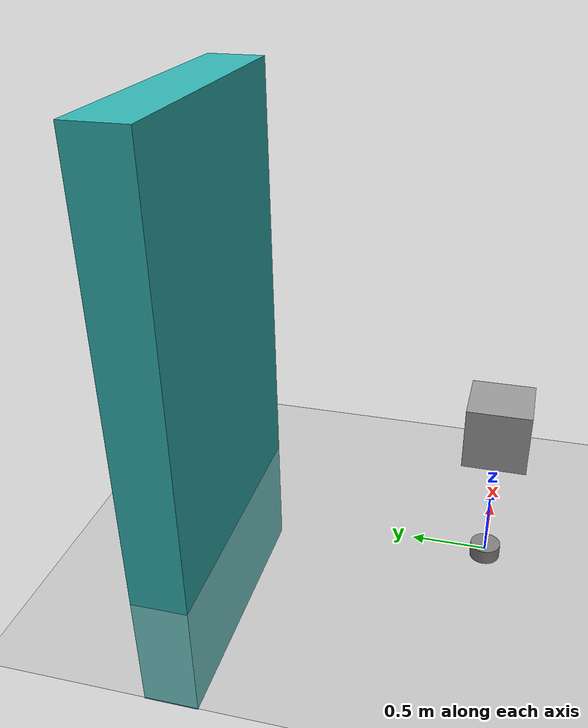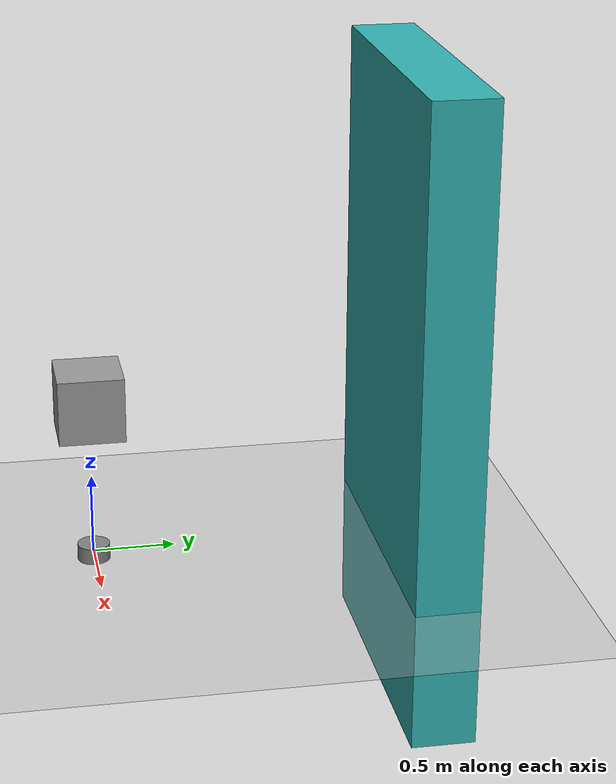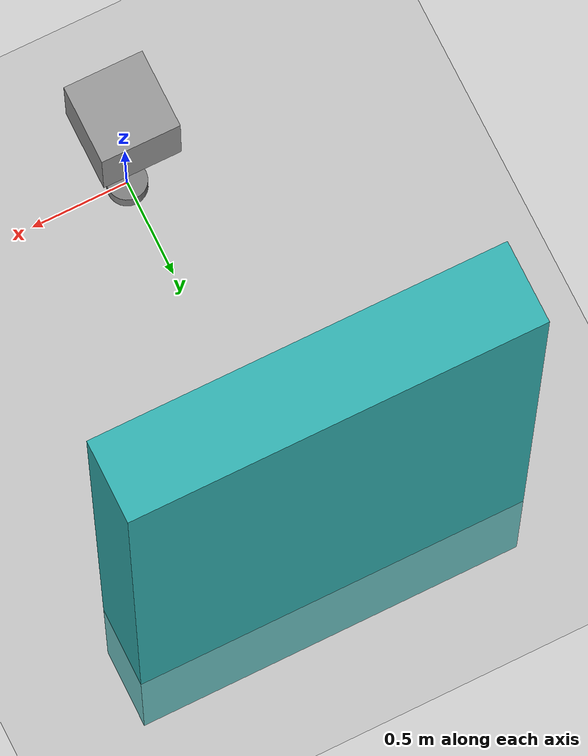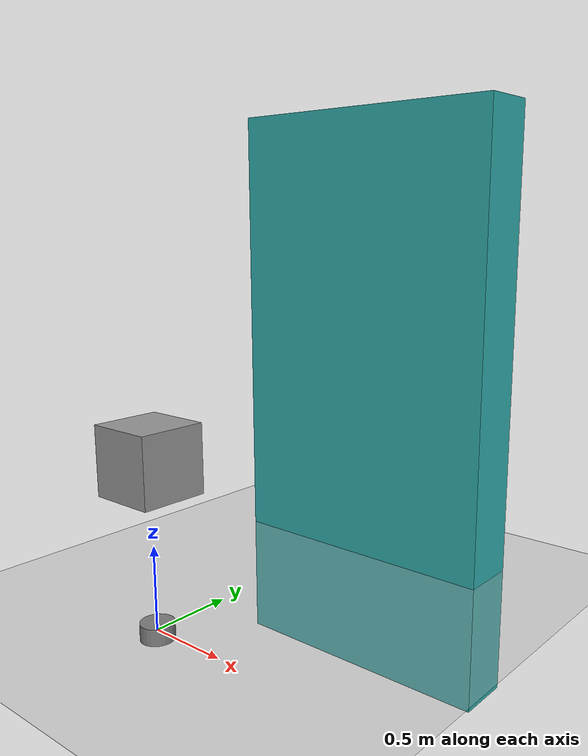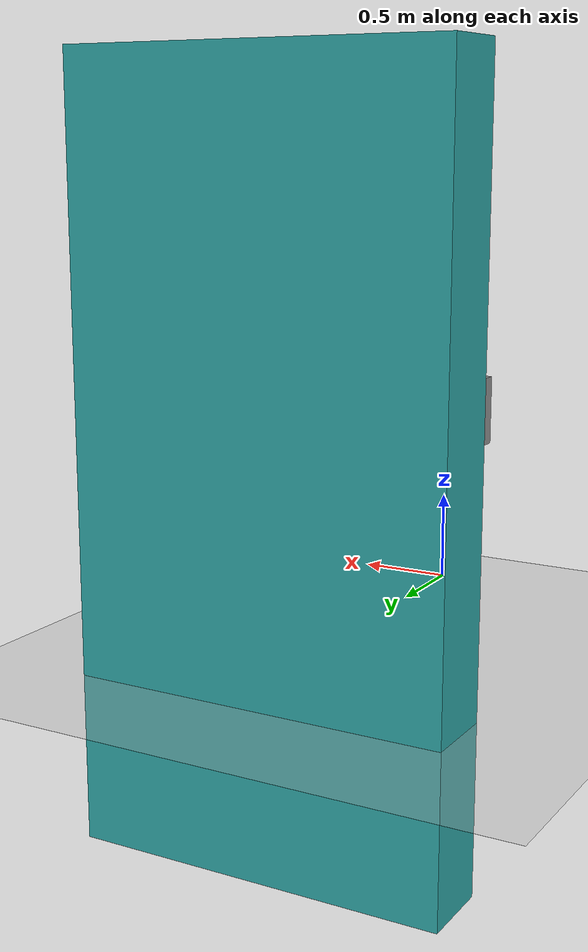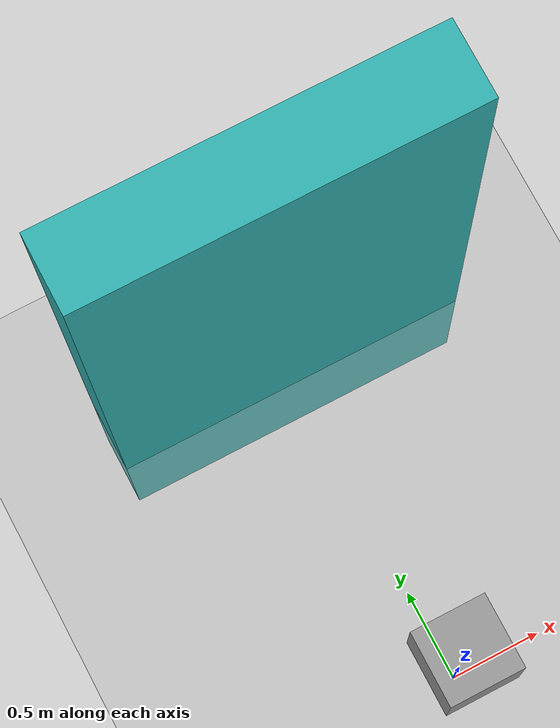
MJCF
<mujoco>
  <option gravity="0 0 -9.81"/>
  <worldbody>
    <body name="hinge" pos="0 0 0">
      <geom type="cylinder" size="0.1 0.05" rgba="0.5 0.5 0.5 1"/>
    </body>
    <body name="support" pos="0 0 1">
      <geom type="box" size="0.2 0.2 0.2" rgba="0.6 0.6 0.6 1"/>
    </body>
    <body name="surface" pos="-10 0 -0.1">
      <geom type="plane" size="30 30 0.1" rgba="0.7 0.7 0.7 1"/>
    </body>
    <body name="door" pos="0 2 1">
      <geom type="box" size="1 0.2 2" density="1" rgba="0.2 0.7 0.7 1"/>
      <joint name="door_joint" type="hinge" axis="1 0 0"/>
    </body>
  </worldbody>
</mujoco>
